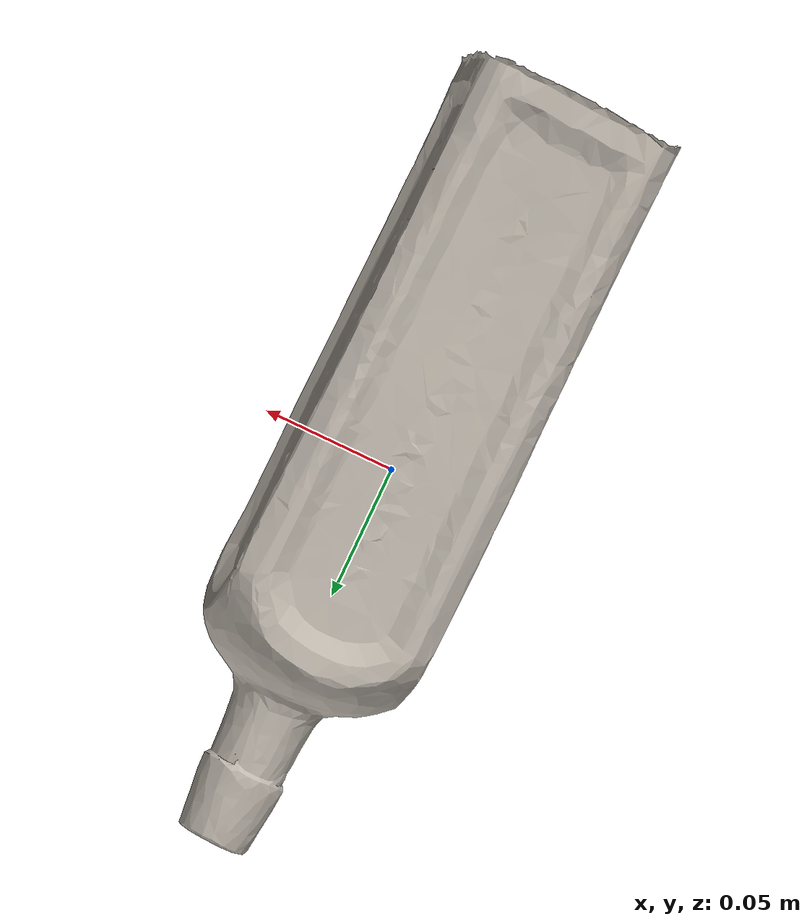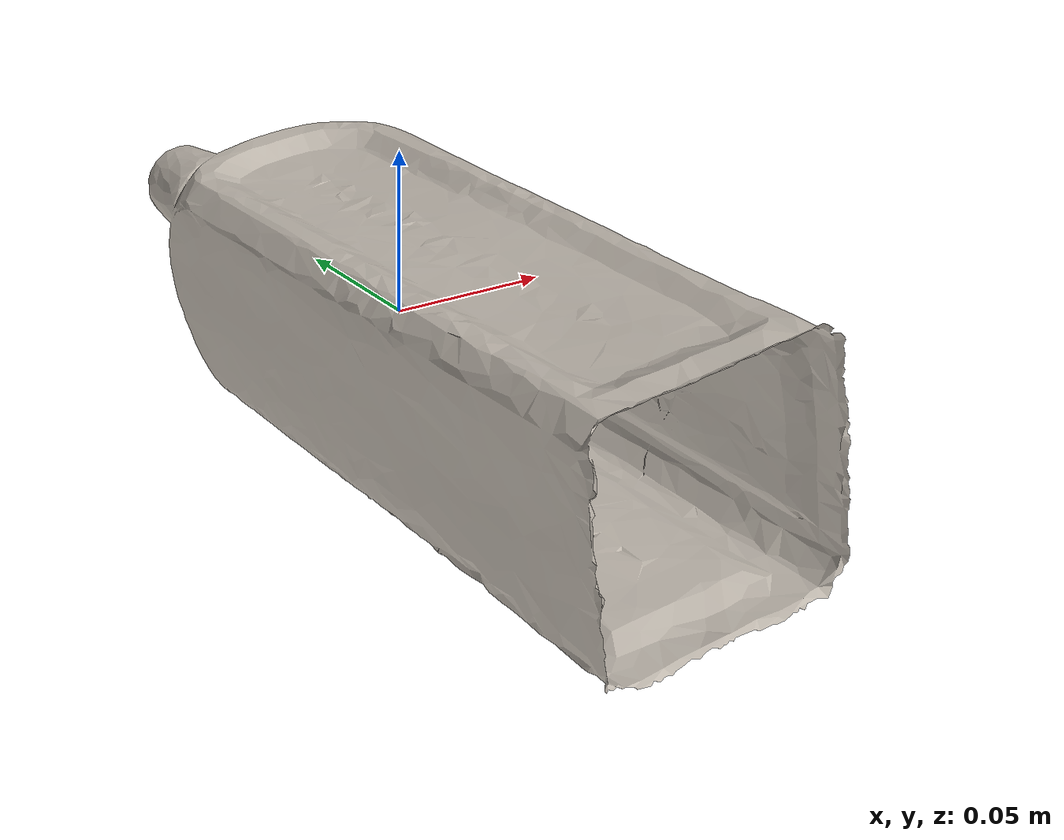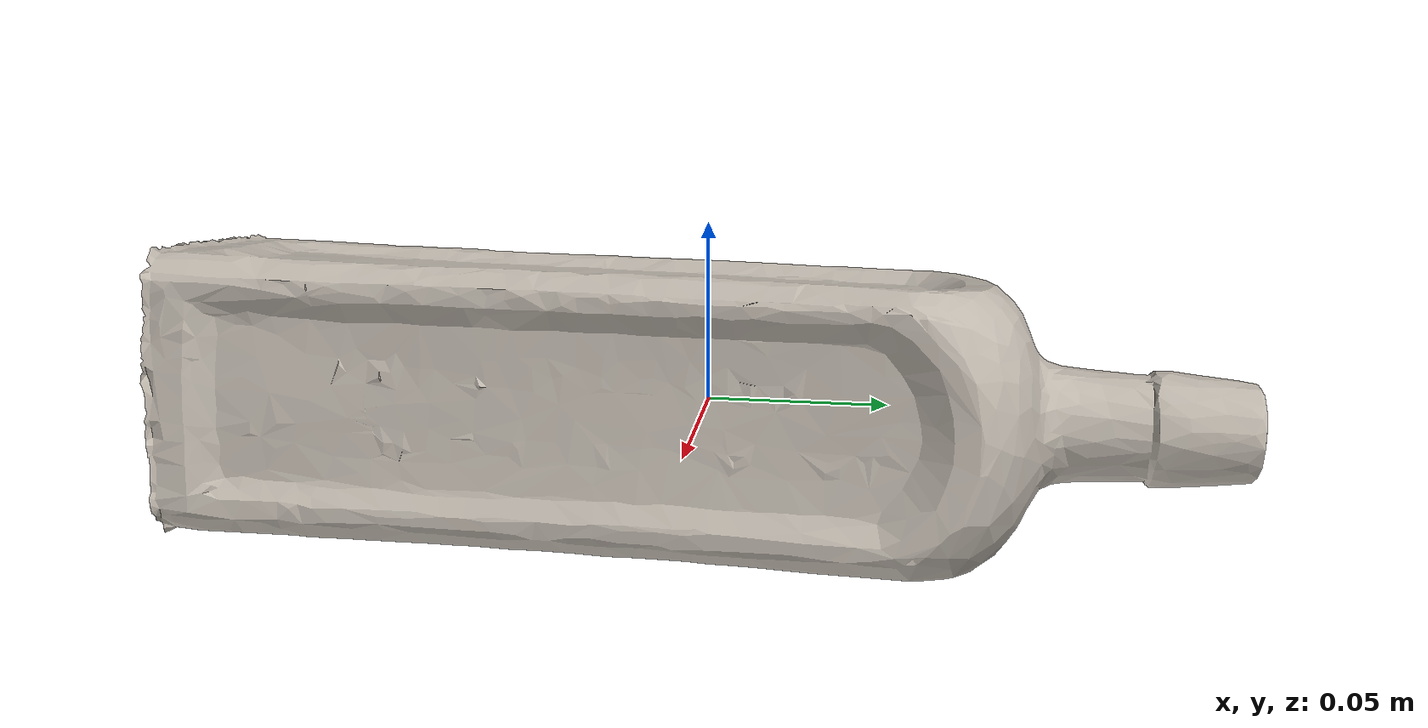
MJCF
<mujoco model="vase_2d0dc184">
  <compiler angle="radian"/>
  <asset>
    <texture type="2d" name="vase_2d0dc184_tex" file="vase_2d0dc184_visual_0.png"/>
    <material name="vase_2d0dc184_mat" texture="vase_2d0dc184_tex"/>
    <mesh name="vase_2d0dc184_visual" content_type="model/obj" file="vase_2d0dc184_visual.obj" scale="-1 1.19226 1"/>
    <mesh name="vase_2d0dc184_c0" content_type="model/obj" file="vase_2d0dc184_c0.obj" scale="-1 1.19226 1"/>
    <mesh name="vase_2d0dc184_c1" content_type="model/obj" file="vase_2d0dc184_c1.obj" scale="-1 1.19226 1"/>
    <mesh name="vase_2d0dc184_c2" content_type="model/obj" file="vase_2d0dc184_c2.obj" scale="-1 1.19226 1"/>
    <mesh name="vase_2d0dc184_c3" content_type="model/obj" file="vase_2d0dc184_c3.obj" scale="-1 1.19226 1"/>
    <mesh name="vase_2d0dc184_c4" content_type="model/obj" file="vase_2d0dc184_c4.obj" scale="-1 1.19226 1"/>
    <mesh name="vase_2d0dc184_c5" content_type="model/obj" file="vase_2d0dc184_c5.obj" scale="-1 1.19226 1"/>
    <mesh name="vase_2d0dc184_c6" content_type="model/obj" file="vase_2d0dc184_c6.obj" scale="-1 1.19226 1"/>
    <mesh name="vase_2d0dc184_c7" content_type="model/obj" file="vase_2d0dc184_c7.obj" scale="-1 1.19226 1"/>
    <mesh name="vase_2d0dc184_c8" content_type="model/obj" file="vase_2d0dc184_c8.obj" scale="-1 1.19226 1"/>
    <mesh name="vase_2d0dc184_c9" content_type="model/obj" file="vase_2d0dc184_c9.obj" scale="-1 1.19226 1"/>
    <mesh name="vase_2d0dc184_c10" content_type="model/obj" file="vase_2d0dc184_c10.obj" scale="-1 1.19226 1"/>
    <mesh name="vase_2d0dc184_c11" content_type="model/obj" file="vase_2d0dc184_c11.obj" scale="-1 1.19226 1"/>
    <mesh name="vase_2d0dc184_c12" content_type="model/obj" file="vase_2d0dc184_c12.obj" scale="-1 1.19226 1"/>
    <mesh name="vase_2d0dc184_c13" content_type="model/obj" file="vase_2d0dc184_c13.obj" scale="-1 1.19226 1"/>
    <mesh name="vase_2d0dc184_c14" content_type="model/obj" file="vase_2d0dc184_c14.obj" scale="-1 1.19226 1"/>
  </asset>
  <worldbody>
    <body name="vase_2d0dc184">
      <freejoint/>
      <geom name="vase_2d0dc184_visual" type="mesh" mesh="vase_2d0dc184_visual" mass="1e-8" contype="0" conaffinity="0" group="2" material="vase_2d0dc184_mat"/>
      <geom name="vase_2d0dc184_c0" type="mesh" mesh="vase_2d0dc184_c0" group="3" density="1172.3" friction="0.9 0.05 0.005" condim="4" rgba="0.4 0.5 0.9 0.35"/>
      <geom name="vase_2d0dc184_c1" type="mesh" mesh="vase_2d0dc184_c1" group="3" density="1172.3" friction="0.9 0.05 0.005" condim="4" rgba="0.4 0.5 0.9 0.35"/>
      <geom name="vase_2d0dc184_c2" type="mesh" mesh="vase_2d0dc184_c2" group="3" density="1172.3" friction="0.9 0.05 0.005" condim="4" rgba="0.4 0.5 0.9 0.35"/>
      <geom name="vase_2d0dc184_c3" type="mesh" mesh="vase_2d0dc184_c3" group="3" density="1172.3" friction="0.9 0.05 0.005" condim="4" rgba="0.4 0.5 0.9 0.35"/>
      <geom name="vase_2d0dc184_c4" type="mesh" mesh="vase_2d0dc184_c4" group="3" density="1172.3" friction="0.9 0.05 0.005" condim="4" rgba="0.4 0.5 0.9 0.35"/>
      <geom name="vase_2d0dc184_c5" type="mesh" mesh="vase_2d0dc184_c5" group="3" density="1172.3" friction="0.9 0.05 0.005" condim="4" rgba="0.4 0.5 0.9 0.35"/>
      <geom name="vase_2d0dc184_c6" type="mesh" mesh="vase_2d0dc184_c6" group="3" density="1172.3" friction="0.9 0.05 0.005" condim="4" rgba="0.4 0.5 0.9 0.35"/>
      <geom name="vase_2d0dc184_c7" type="mesh" mesh="vase_2d0dc184_c7" group="3" density="1172.3" friction="0.9 0.05 0.005" condim="4" rgba="0.4 0.5 0.9 0.35"/>
      <geom name="vase_2d0dc184_c8" type="mesh" mesh="vase_2d0dc184_c8" group="3" density="1172.3" friction="0.9 0.05 0.005" condim="4" rgba="0.4 0.5 0.9 0.35"/>
      <geom name="vase_2d0dc184_c9" type="mesh" mesh="vase_2d0dc184_c9" group="3" density="1172.3" friction="0.9 0.05 0.005" condim="4" rgba="0.4 0.5 0.9 0.35"/>
      <geom name="vase_2d0dc184_c10" type="mesh" mesh="vase_2d0dc184_c10" group="3" density="1172.3" friction="0.9 0.05 0.005" condim="4" rgba="0.4 0.5 0.9 0.35"/>
      <geom name="vase_2d0dc184_c11" type="mesh" mesh="vase_2d0dc184_c11" group="3" density="1172.3" friction="0.9 0.05 0.005" condim="4" rgba="0.4 0.5 0.9 0.35"/>
      <geom name="vase_2d0dc184_c12" type="mesh" mesh="vase_2d0dc184_c12" group="3" density="1172.3" friction="0.9 0.05 0.005" condim="4" rgba="0.4 0.5 0.9 0.35"/>
      <geom name="vase_2d0dc184_c13" type="mesh" mesh="vase_2d0dc184_c13" group="3" density="1172.3" friction="0.9 0.05 0.005" condim="4" rgba="0.4 0.5 0.9 0.35"/>
      <geom name="vase_2d0dc184_c14" type="mesh" mesh="vase_2d0dc184_c14" group="3" density="1172.3" friction="0.9 0.05 0.005" condim="4" rgba="0.4 0.5 0.9 0.35"/>
    </body>
  </worldbody>
</mujoco>
